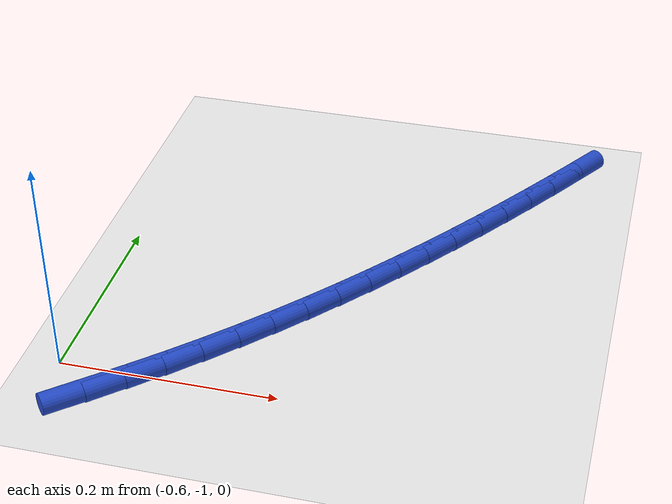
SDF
<sdf version="1.6">
 <world name="default">
  <model name="ground_plane">
   <static>1</static>
   <link name="link">
    <collision name="collision">
     <geometry><plane><normal>0 0 1</normal><size>100 100</size></plane></geometry>
     <surface><friction><ode><mu>100</mu><mu2>50</mu2></ode></friction></surface>
    </collision>
    <visual name="visual">
     <cast_shadows>0</cast_shadows>
     <geometry><plane><normal>0 0 1</normal><size>100 100</size></plane></geometry>
     <material>
      <script><uri>file://media/materials/scripts/gazebo.material</uri><name>Gazebo/WhiteGlow</name></script>
     </material>
    </visual>
   </link>
  </model>
  <model name="line">
   <link name="link_166">
    <pose>-0.5593643434983174 -1.038457388996673 0.01 0 1.57 0.7295992201715847</pose>
    <collision name="collision">
     <geometry><cylinder><radius>0.01</radius><length>0.08</length></cylinder></geometry>
    </collision>
    <visual name="visual">
     <material>
      <script><name>Gazebo/Blue</name><uri>file://media/materials/scripts/gazebo.material</uri></script>
     </material>
     <geometry><cylinder><radius>0.01</radius><length>0.08</length></cylinder></geometry>
    </visual>
   </link>
   <link name="link_167">
    <pose>-0.5317866585629626 -1.013797532537706 0.01 0 1.57 0.7539734073221351</pose>
    <collision name="collision">
     <geometry><cylinder><radius>0.01</radius><length>0.08</length></cylinder></geometry>
    </collision>
    <visual name="visual">
     <material>
      <script><name>Gazebo/Blue</name><uri>file://media/materials/scripts/gazebo.material</uri></script>
     </material>
     <geometry><cylinder><radius>0.01</radius><length>0.08</length></cylinder></geometry>
    </visual>
   </link>
   <link name="link_168">
    <pose>-0.5050707582134554 -0.9887100761118017 0.01 0 1.57 0.7777477965909617</pose>
    <collision name="collision">
     <geometry><cylinder><radius>0.01</radius><length>0.08</length></cylinder></geometry>
    </collision>
    <visual name="visual">
     <material>
      <script><name>Gazebo/Blue</name><uri>file://media/materials/scripts/gazebo.material</uri></script>
     </material>
     <geometry><cylinder><radius>0.01</radius><length>0.08</length></cylinder></geometry>
    </visual>
   </link>
   <link name="link_169">
    <pose>-0.47917505811757644 -0.9632075985993664 0.01 0 1.57 0.8008515567930706</pose>
    <collision name="collision">
     <geometry><cylinder><radius>0.01</radius><length>0.08</length></cylinder></geometry>
    </collision>
    <visual name="visual">
     <material>
      <script><name>Gazebo/Blue</name><uri>file://media/materials/scripts/gazebo.material</uri></script>
     </material>
     <geometry><cylinder><radius>0.01</radius><length>0.08</length></cylinder></geometry>
    </visual>
   </link>
   <link name="link_170">
    <pose>-0.4540578526768213 -0.9373018526477792 0.01 0 1.57 0.8232043945993194</pose>
    <collision name="collision">
     <geometry><cylinder><radius>0.01</radius><length>0.08</length></cylinder></geometry>
    </collision>
    <visual name="visual">
     <material>
      <script><name>Gazebo/Blue</name><uri>file://media/materials/scripts/gazebo.material</uri></script>
     </material>
     <geometry><cylinder><radius>0.01</radius><length>0.08</length></cylinder></geometry>
    </visual>
   </link>
   <link name="link_171">
    <pose>-0.42967743629268584 -0.9110045909044204 0.01 0 1.57 0.8447317716627873</pose>
    <collision name="collision">
     <geometry><cylinder><radius>0.01</radius><length>0.08</length></cylinder></geometry>
    </collision>
    <visual name="visual">
     <material>
      <script><name>Gazebo/Blue</name><uri>file://media/materials/scripts/gazebo.material</uri></script>
     </material>
     <geometry><cylinder><radius>0.01</radius><length>0.08</length></cylinder></geometry>
    </visual>
   </link>
   <link name="link_172">
    <pose>-0.4059921033666655 -0.8843275660166698 0.01 0 1.57 0.865365477518576</pose>
    <collision name="collision">
     <geometry><cylinder><radius>0.01</radius><length>0.08</length></cylinder></geometry>
    </collision>
    <visual name="visual">
     <material>
      <script><name>Gazebo/Blue</name><uri>file://media/materials/scripts/gazebo.material</uri></script>
     </material>
     <geometry><cylinder><radius>0.01</radius><length>0.08</length></cylinder></geometry>
    </visual>
   </link>
   <link name="link_173">
    <pose>-0.3829601483002562 -0.8572825306319078 0.01 0 1.57 0.8850440181493419</pose>
    <collision name="collision">
     <geometry><cylinder><radius>0.01</radius><length>0.08</length></cylinder></geometry>
    </collision>
    <visual name="visual">
     <material>
      <script><name>Gazebo/Blue</name><uri>file://media/materials/scripts/gazebo.material</uri></script>
     </material>
     <geometry><cylinder><radius>0.01</radius><length>0.08</length></cylinder></geometry>
    </visual>
   </link>
   <link name="link_174">
    <pose>-0.3605398654949535 -0.8298812373975138 0.01 0 1.57 0.9037128259620427</pose>
    <collision name="collision">
     <geometry><cylinder><radius>0.01</radius><length>0.08</length></cylinder></geometry>
    </collision>
    <visual name="visual">
     <material>
      <script><name>Gazebo/Blue</name><uri>file://media/materials/scripts/gazebo.material</uri></script>
     </material>
     <geometry><cylinder><radius>0.01</radius><length>0.08</length></cylinder></geometry>
    </visual>
   </link>
   <link name="link_175">
    <pose>-0.33868954935225287 -0.8021354389608681 0.01 0 1.57 0.9213243045303611</pose>
    <collision name="collision">
     <geometry><cylinder><radius>0.01</radius><length>0.08</length></cylinder></geometry>
    </collision>
    <visual name="visual">
     <material>
      <script><name>Gazebo/Blue</name><uri>file://media/materials/scripts/gazebo.material</uri></script>
     </material>
     <geometry><cylinder><radius>0.01</radius><length>0.08</length></cylinder></geometry>
    </visual>
   </link>
   <link name="link_176">
    <pose>-0.31736749427365024 -0.7740568879693503 0.01 0 1.57 0.9378377272769168</pose>
    <collision name="collision">
     <geometry><cylinder><radius>0.01</radius><length>0.08</length></cylinder></geometry>
    </collision>
    <visual name="visual">
     <material>
      <script><name>Gazebo/Blue</name><uri>file://media/materials/scripts/gazebo.material</uri></script>
     </material>
     <geometry><cylinder><radius>0.01</radius><length>0.08</length></cylinder></geometry>
    </visual>
   </link>
   <link name="link_177">
    <pose>-0.29653199466064134 -0.7456573370703408 0.01 0 1.57 0.9532190131581609</pose>
    <collision name="collision">
     <geometry><cylinder><radius>0.01</radius><length>0.08</length></cylinder></geometry>
    </collision>
    <visual name="visual">
     <material>
      <script><name>Gazebo/Blue</name><uri>file://media/materials/scripts/gazebo.material</uri></script>
     </material>
     <geometry><cylinder><radius>0.01</radius><length>0.08</length></cylinder></geometry>
    </visual>
   </link>
   <link name="link_178">
    <pose>-0.2761413449147216 -0.716948538911219 0.01 0 1.57 0.9674404044249446</pose>
    <collision name="collision">
     <geometry><cylinder><radius>0.01</radius><length>0.08</length></cylinder></geometry>
    </collision>
    <visual name="visual">
     <material>
      <script><name>Gazebo/Blue</name><uri>file://media/materials/scripts/gazebo.material</uri></script>
     </material>
     <geometry><cylinder><radius>0.01</radius><length>0.08</length></cylinder></geometry>
    </visual>
   </link>
   <link name="link_179">
    <pose>-0.25615383943738673 -0.6879422461393653 0.01 0 1.57 0.9804800718701551</pose>
    <collision name="collision">
     <geometry><cylinder><radius>0.01</radius><length>0.08</length></cylinder></geometry>
    </collision>
    <visual name="visual">
     <material>
      <script><name>Gazebo/Blue</name><uri>file://media/materials/scripts/gazebo.material</uri></script>
     </material>
     <geometry><cylinder><radius>0.01</radius><length>0.08</length></cylinder></geometry>
    </visual>
   </link>
   <link name="link_180">
    <pose>-0.23652777263013258 -0.6586502114021592 0.01 0 1.57 0.9923216719422324</pose>
    <collision name="collision">
     <geometry><cylinder><radius>0.01</radius><length>0.08</length></cylinder></geometry>
    </collision>
    <visual name="visual">
     <material>
      <script><name>Gazebo/Blue</name><uri>file://media/materials/scripts/gazebo.material</uri></script>
     </material>
     <geometry><cylinder><radius>0.01</radius><length>0.08</length></cylinder></geometry>
    </visual>
   </link>
   <link name="link_181">
    <pose>-0.21722143889445458 -0.629084187346981 0.01 0 1.57 1.0029538780468312</pose>
    <collision name="collision">
     <geometry><cylinder><radius>0.01</radius><length>0.08</length></cylinder></geometry>
    </collision>
    <visual name="visual">
     <material>
      <script><name>Gazebo/Blue</name><uri>file://media/materials/scripts/gazebo.material</uri></script>
     </material>
     <geometry><cylinder><radius>0.01</radius><length>0.08</length></cylinder></geometry>
    </visual>
   </link>
   <link name="link_182">
    <pose>-0.19819313263184865 -0.5992559266212106 0.01 0 1.57 1.0125641999669583</pose>
    <collision name="collision">
     <geometry><cylinder><radius>0.01</radius><length>0.08</length></cylinder></geometry>
    </collision>
    <visual name="visual">
     <material>
      <script><name>Gazebo/Blue</name><uri>file://media/materials/scripts/gazebo.material</uri></script>
     </material>
     <geometry><cylinder><radius>0.01</radius><length>0.08</length></cylinder></geometry>
    </visual>
   </link>
  </model>
 </world>
</sdf>
